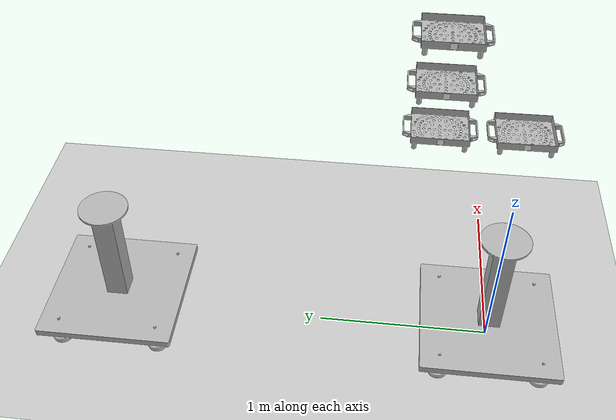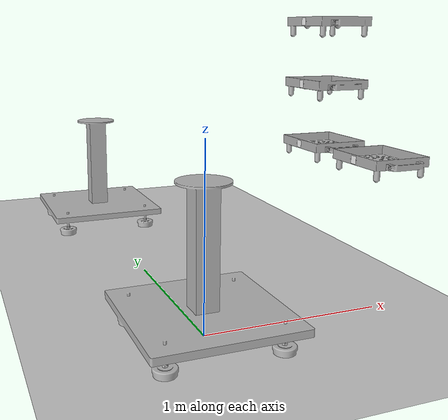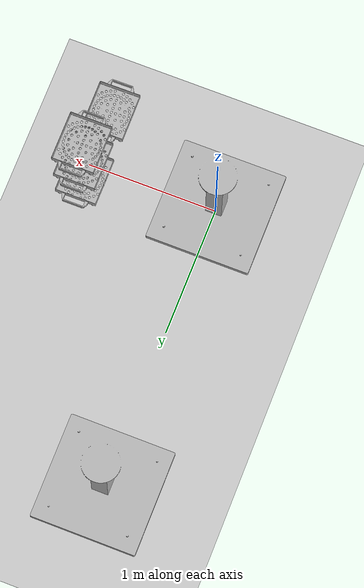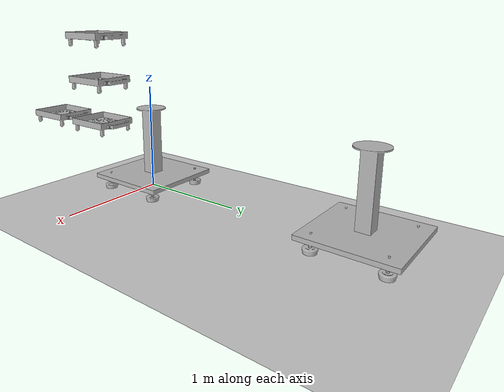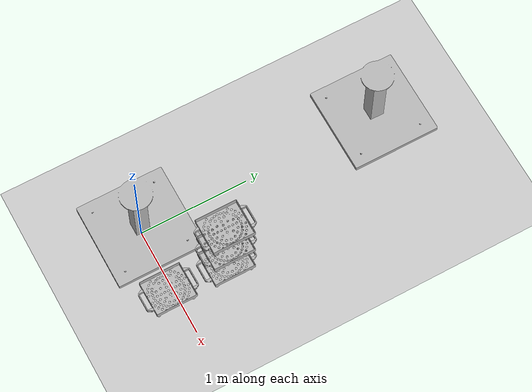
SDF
<sdf version="1.6">
 <world name="default">
  <light name="sun" type="directional">
   <pose>0 0 10 0 -0 0</pose>
   <diffuse>0.8 0.8 0.8 1</diffuse>
   <specular>0.2 0.2 0.2 1</specular>
   <attenuation>
    <range>1000</range>
    <constant>0.9</constant>
    <linear>0.01</linear>
    <quadratic>0.001</quadratic>
   </attenuation>
   <direction>-0.5 0.1 -0.9</direction>
  </light>
  <model name="ground_plane">
   <static>1</static>
   <link name="link">
    <collision name="collision">
     <geometry><plane><normal>0 0 1</normal><size>100 100</size></plane></geometry>
     <surface>
      <contact><collide_bitmask>65535</collide_bitmask></contact>
      <friction><ode><mu>100</mu><mu2>50</mu2></ode></friction>
     </surface>
     <max_contacts>99999999</max_contacts>
    </collision>
    <visual name="visual">
     <cast_shadows>0</cast_shadows>
     <geometry><plane><normal>0 0 1</normal><size>100 100</size></plane></geometry>
     <material>
      <script><uri>file://media/materials/scripts/gazebo.material</uri><name>Gazebo/Grey</name></script>
     </material>
    </visual>
   </link>
  </model>
  <gravity>0 0 -9.8</gravity>
  <magnetic_field>6e-06 2.3e-05 -4.2e-05</magnetic_field>
  <atmosphere type="adiabatic"/>
  <physics name="default_physics" default="0" type="ode">
   <max_contacts>100</max_contacts>
   <max_step_size>0.001</max_step_size>
   <real_time_factor>1</real_time_factor>
   <real_time_update_rate>1000</real_time_update_rate>
   <ode>
    <solver>
     <type>quick</type>
     <iters>50</iters>
     <sor>1.3</sor>
     <use_dynamic_moi_rescaling>0</use_dynamic_moi_rescaling>
    </solver>
    <constraints>
     <cfm>0</cfm>
     <erp>0.2</erp>
     <contact_max_correcting_vel>100</contact_max_correcting_vel>
     <contact_surface_layer>0.001</contact_surface_layer>
    </constraints>
   </ode>
  </physics>
  <scene><ambient>0.4 0.4 0.4 1</ambient><background>0.7 0.7 0.7 1</background><shadows>1</shadows></scene>
  <audio><device>default</device></audio>
  <spherical_coordinates>
   <surface_model>EARTH_WGS84</surface_model>
   <latitude_deg>0</latitude_deg>
   <longitude_deg>0</longitude_deg>
   <elevation>0</elevation>
   <heading_deg>0</heading_deg>
  </spherical_coordinates>
  <model name="UR10Base">
   <pose>-0.4 -0.35 -0.48 0 -0 0</pose>
   <static>1</static>
   <link name="link">
    <visual name="visual">
     <geometry><mesh><scale>0.001 0.001 0.001</scale><uri>model://UR10Base/meshes/base.obj</uri></mesh></geometry>
    </visual>
    <collision name="collision">
     <geometry><mesh><scale>0.001 0.001 0.001</scale><uri>model://UR10Base/meshes/base.obj</uri></mesh></geometry>
    </collision>
   </link>
  </model>
  <model name="CSSD Tray 0">
   <pose>0.87016 -0.155317 0.794103 8e-06 0.000796 0.01039</pose>
   <allow_auto_disable>0</allow_auto_disable>
   <static>0</static>
   <static>0</static>
   <link name="base::tray">
    <pose>0 0 0 0 -0 3.14</pose>
    <inertial>
     <mass>5.5</mass>
     <inertia><ixx>0.1026</ixx><ixy>0</ixy><ixz>0</ixz><iyy>0.206</iyy><iyz>0</iyz><izz>0.155</izz></inertia>
    </inertial>
    <collision name="tray floor">
     <pose>0 0 0.06 0 -0 0</pose>
     <geometry><box><size>0.3 0.35 0.004</size></box></geometry>
    </collision>
    <collision name="tray pegs">
     <geometry><mesh><scale>1 1 1</scale><uri>model://CSSD Tray/meshes/tray_pegs.stl</uri></mesh></geometry>
    </collision>
    <collision name="front left leg">
     <pose>0.128 0.153 0.034 0 -0 0</pose>
     <geometry><cylinder><radius>0.015</radius><length>0.048</length></cylinder></geometry>
    </collision>
    <collision name="front right leg">
     <pose>-0.128 0.153 0.034 0 -0 0</pose>
     <geometry><cylinder><radius>0.015</radius><length>0.048</length></cylinder></geometry>
    </collision>
    <collision name="back left leg">
     <pose>0.128 -0.153 0.034 0 -0 0</pose>
     <geometry><cylinder><radius>0.015</radius><length>0.048</length></cylinder></geometry>
    </collision>
    <collision name="back right leg">
     <pose>-0.128 -0.153 0.034 0 -0 0</pose>
     <geometry><cylinder><radius>0.015</radius><length>0.048</length></cylinder></geometry>
    </collision>
    <visual name="visual">
     <geometry>
      <mesh><scale>1 1 1</scale><uri>model://CSSD Tray/meshes/Tray_Assem_Locating_Stand-off.STL</uri></mesh>
     </geometry>
    </visual>
   </link>
   <link name="aruco_tag">
    <pose>-0.154 0 0.0824 0 -1.57 0</pose>
    <inertial>
     <mass>0.01</mass>
     <inertia><ixx>0.001</ixx><iyy>0.001</iyy><izz>0.001</izz><ixy>0</ixy><ixz>0</ixz><iyz>0</iyz></inertia>
    </inertial>
    <visual name="marker">
     <geometry><box><size>0.04 0.04 1e-05</size></box></geometry>
     <material>
      <script>
       <uri>model://aruco_visual_marker_0/materials/scripts</uri>
       <uri>model://aruco_visual_marker_0/materials/textures</uri>
       <name>ArucoVisualMarker0/Marker</name>
      </script>
      <ambient>1 1 1 1</ambient>
      <diffuse>1 1 1 1</diffuse>
      <specular>0 0 0 1</specular>
      <emissive>1 1 1 0</emissive>
      <shader type="vertex"><normal_map>__default__</normal_map></shader>
     </material>
    </visual>
   </link>
   <joint name="aruco_tag_joint" type="revolute">
    <parent>base::tray</parent>
    <child>aruco_tag</child>
    <axis>
     <limit><lower>0</lower><upper>0</upper></limit>
     <xyz>0 0 1</xyz>
     <use_parent_model_frame>0</use_parent_model_frame>
     <dynamics><spring_reference>0</spring_reference><spring_stiffness>0</spring_stiffness></dynamics>
    </axis>
   </joint>
  </model>
  <model name="CSSD Tray 1">
   <pose>0.869035 0.360239 0.791636 1e-06 0.000796 0.002389</pose>
   <allow_auto_disable>0</allow_auto_disable>
   <static>0</static>
   <static>0</static>
   <link name="base::tray">
    <pose>0 0 0 0 -0 3.14</pose>
    <inertial>
     <mass>5.5</mass>
     <inertia><ixx>0.1026</ixx><ixy>0</ixy><ixz>0</ixz><iyy>0.206</iyy><iyz>0</iyz><izz>0.155</izz></inertia>
    </inertial>
    <collision name="tray floor">
     <pose>0 0 0.06 0 -0 0</pose>
     <geometry><box><size>0.3 0.35 0.004</size></box></geometry>
    </collision>
    <collision name="tray pegs">
     <geometry><mesh><scale>1 1 1</scale><uri>model://CSSD Tray/meshes/tray_pegs.stl</uri></mesh></geometry>
    </collision>
    <collision name="front left leg">
     <pose>0.128 0.153 0.034 0 -0 0</pose>
     <geometry><cylinder><radius>0.015</radius><length>0.048</length></cylinder></geometry>
    </collision>
    <collision name="front right leg">
     <pose>-0.128 0.153 0.034 0 -0 0</pose>
     <geometry><cylinder><radius>0.015</radius><length>0.048</length></cylinder></geometry>
    </collision>
    <collision name="back left leg">
     <pose>0.128 -0.153 0.034 0 -0 0</pose>
     <geometry><cylinder><radius>0.015</radius><length>0.048</length></cylinder></geometry>
    </collision>
    <collision name="back right leg">
     <pose>-0.128 -0.153 0.034 0 -0 0</pose>
     <geometry><cylinder><radius>0.015</radius><length>0.048</length></cylinder></geometry>
    </collision>
    <visual name="visual">
     <geometry>
      <mesh><scale>1 1 1</scale><uri>model://CSSD Tray/meshes/Tray_Assem_Locating_Stand-off.STL</uri></mesh>
     </geometry>
    </visual>
   </link>
   <link name="aruco_tag">
    <pose>-0.154 0 0.0824 0 -1.57 0</pose>
    <inertial>
     <mass>0.01</mass>
     <inertia><ixx>0.001</ixx><iyy>0.001</iyy><izz>0.001</izz><ixy>0</ixy><ixz>0</ixz><iyz>0</iyz></inertia>
    </inertial>
    <visual name="marker">
     <geometry><box><size>0.04 0.04 1e-05</size></box></geometry>
     <material>
      <script>
       <uri>model://aruco_visual_marker_1/materials/scripts</uri>
       <uri>model://aruco_visual_marker_1/materials/textures</uri>
       <name>ArucoVisualMarker1/Marker</name>
      </script>
      <ambient>1 1 1 1</ambient>
      <diffuse>1 1 1 1</diffuse>
      <specular>0 0 0 1</specular>
      <emissive>1 1 1 0</emissive>
      <shader type="vertex"><normal_map>__default__</normal_map></shader>
     </material>
    </visual>
   </link>
   <joint name="aruco_tag_joint" type="revolute">
    <parent>base::tray</parent>
    <child>aruco_tag</child>
    <axis>
     <limit><lower>0</lower><upper>0</upper></limit>
     <xyz>0 0 1</xyz>
     <use_parent_model_frame>0</use_parent_model_frame>
     <dynamics><spring_reference>0</spring_reference><spring_stiffness>0</spring_stiffness></dynamics>
    </axis>
   </joint>
  </model>
  <model name="CSSD Tray 2">
   <pose>0.869299 0.360239 1.12363 1e-06 0.000797 0.002389</pose>
   <allow_auto_disable>0</allow_auto_disable>
   <static>0</static>
   <static>0</static>
   <link name="base::tray">
    <pose>0 0 0 0 -0 3.14</pose>
    <inertial>
     <mass>5.5</mass>
     <inertia><ixx>0.1026</ixx><ixy>0</ixy><ixz>0</ixz><iyy>0.206</iyy><iyz>0</iyz><izz>0.155</izz></inertia>
    </inertial>
    <collision name="tray floor">
     <pose>0 0 0.06 0 -0 0</pose>
     <geometry><box><size>0.3 0.35 0.004</size></box></geometry>
    </collision>
    <collision name="tray pegs">
     <geometry><mesh><scale>1 1 1</scale><uri>model://CSSD Tray/meshes/tray_pegs.stl</uri></mesh></geometry>
    </collision>
    <collision name="front left leg">
     <pose>0.128 0.153 0.034 0 -0 0</pose>
     <geometry><cylinder><radius>0.015</radius><length>0.048</length></cylinder></geometry>
    </collision>
    <collision name="front right leg">
     <pose>-0.128 0.153 0.034 0 -0 0</pose>
     <geometry><cylinder><radius>0.015</radius><length>0.048</length></cylinder></geometry>
    </collision>
    <collision name="back left leg">
     <pose>0.128 -0.153 0.034 0 -0 0</pose>
     <geometry><cylinder><radius>0.015</radius><length>0.048</length></cylinder></geometry>
    </collision>
    <collision name="back right leg">
     <pose>-0.128 -0.153 0.034 0 -0 0</pose>
     <geometry><cylinder><radius>0.015</radius><length>0.048</length></cylinder></geometry>
    </collision>
    <visual name="visual">
     <geometry>
      <mesh><scale>1 1 1</scale><uri>model://CSSD Tray/meshes/Tray_Assem_Locating_Stand-off.STL</uri></mesh>
     </geometry>
    </visual>
   </link>
   <link name="aruco_tag">
    <pose>-0.154 0 0.0824 0 -1.57 0</pose>
    <inertial>
     <mass>0.01</mass>
     <inertia><ixx>0.001</ixx><iyy>0.001</iyy><izz>0.001</izz><ixy>0</ixy><ixz>0</ixz><iyz>0</iyz></inertia>
    </inertial>
    <visual name="marker">
     <geometry><box><size>0.04 0.04 1e-05</size></box></geometry>
     <material>
      <script>
       <uri>model://aruco_visual_marker_2/materials/scripts</uri>
       <uri>model://aruco_visual_marker_2/materials/textures</uri>
       <name>ArucoVisualMarker2/Marker</name>
      </script>
      <ambient>1 1 1 1</ambient>
      <diffuse>1 1 1 1</diffuse>
      <specular>0 0 0 1</specular>
      <emissive>1 1 1 0</emissive>
      <shader type="vertex"><normal_map>__default__</normal_map></shader>
     </material>
    </visual>
   </link>
   <joint name="aruco_tag_joint" type="revolute">
    <parent>base::tray</parent>
    <child>aruco_tag</child>
    <axis>
     <limit><lower>0</lower><upper>0</upper></limit>
     <xyz>0 0 1</xyz>
     <use_parent_model_frame>0</use_parent_model_frame>
     <dynamics><spring_reference>0</spring_reference><spring_stiffness>0</spring_stiffness></dynamics>
    </axis>
   </joint>
  </model>
  <model name="CSSD Tray 3">
   <pose>0.869563 0.360239 1.45564 1e-06 0.000797 0.002388</pose>
   <allow_auto_disable>0</allow_auto_disable>
   <static>0</static>
   <static>0</static>
   <link name="base::tray">
    <pose>0 0 0 0 -0 3.14</pose>
    <inertial>
     <mass>5.5</mass>
     <inertia><ixx>0.1026</ixx><ixy>0</ixy><ixz>0</ixz><iyy>0.206</iyy><iyz>0</iyz><izz>0.155</izz></inertia>
    </inertial>
    <collision name="tray floor">
     <pose>0 0 0.06 0 -0 0</pose>
     <geometry><box><size>0.3 0.35 0.004</size></box></geometry>
    </collision>
    <collision name="tray pegs">
     <geometry><mesh><scale>1 1 1</scale><uri>model://CSSD Tray/meshes/tray_pegs.stl</uri></mesh></geometry>
    </collision>
    <collision name="front left leg">
     <pose>0.128 0.153 0.034 0 -0 0</pose>
     <geometry><cylinder><radius>0.015</radius><length>0.048</length></cylinder></geometry>
    </collision>
    <collision name="front right leg">
     <pose>-0.128 0.153 0.034 0 -0 0</pose>
     <geometry><cylinder><radius>0.015</radius><length>0.048</length></cylinder></geometry>
    </collision>
    <collision name="back left leg">
     <pose>0.128 -0.153 0.034 0 -0 0</pose>
     <geometry><cylinder><radius>0.015</radius><length>0.048</length></cylinder></geometry>
    </collision>
    <collision name="back right leg">
     <pose>-0.128 -0.153 0.034 0 -0 0</pose>
     <geometry><cylinder><radius>0.015</radius><length>0.048</length></cylinder></geometry>
    </collision>
    <visual name="visual">
     <geometry>
      <mesh><scale>1 1 1</scale><uri>model://CSSD Tray/meshes/Tray_Assem_Locating_Stand-off.STL</uri></mesh>
     </geometry>
    </visual>
   </link>
   <link name="aruco_tag">
    <pose>-0.154 0 0.0824 0 -1.57 0</pose>
    <inertial>
     <mass>0.01</mass>
     <inertia><ixx>0.001</ixx><iyy>0.001</iyy><izz>0.001</izz><ixy>0</ixy><ixz>0</ixz><iyz>0</iyz></inertia>
    </inertial>
    <visual name="marker">
     <geometry><box><size>0.04 0.04 1e-05</size></box></geometry>
     <material>
      <script>
       <uri>model://aruco_visual_marker_3/materials/scripts</uri>
       <uri>model://aruco_visual_marker_3/materials/textures</uri>
       <name>ArucoVisualMarker3/Marker</name>
      </script>
      <ambient>1 1 1 1</ambient>
      <diffuse>1 1 1 1</diffuse>
      <specular>0 0 0 1</specular>
      <emissive>1 1 1 0</emissive>
      <shader type="vertex"><normal_map>__default__</normal_map></shader>
     </material>
    </visual>
   </link>
   <joint name="aruco_tag_joint" type="revolute">
    <parent>base::tray</parent>
    <child>aruco_tag</child>
    <axis>
     <limit><lower>0</lower><upper>0</upper></limit>
     <xyz>0 0 1</xyz>
     <use_parent_model_frame>0</use_parent_model_frame>
     <dynamics><spring_reference>0</spring_reference><spring_stiffness>0</spring_stiffness></dynamics>
    </axis>
   </joint>
  </model>
  <model name="UR10Base_0">
   <static>1</static>
   <link name="link">
    <visual name="visual">
     <geometry><mesh><scale>0.001 0.001 0.001</scale><uri>model://UR10Base/meshes/base.obj</uri></mesh></geometry>
    </visual>
    <collision name="collision">
     <geometry><mesh><scale>0.001 0.001 0.001</scale><uri>model://UR10Base/meshes/base.obj</uri></mesh></geometry>
    </collision>
   </link>
   <pose>-0.395048 1.88885 -0.476797 0 -0 0</pose>
  </model>
 </world>
</sdf>
